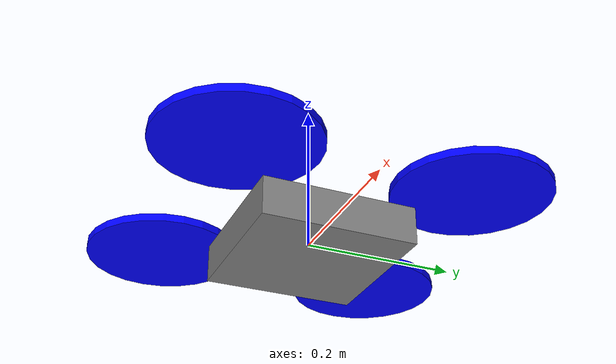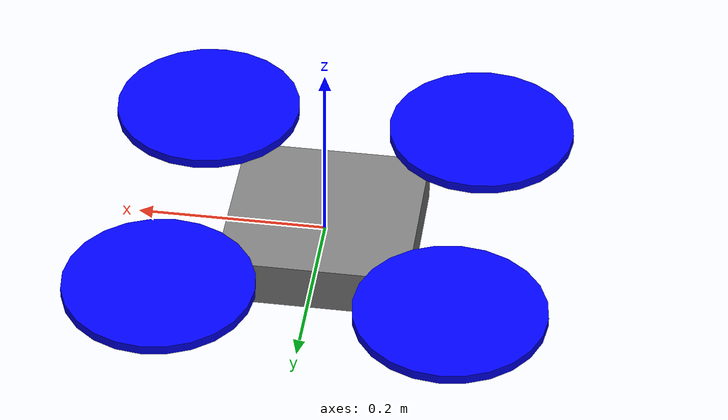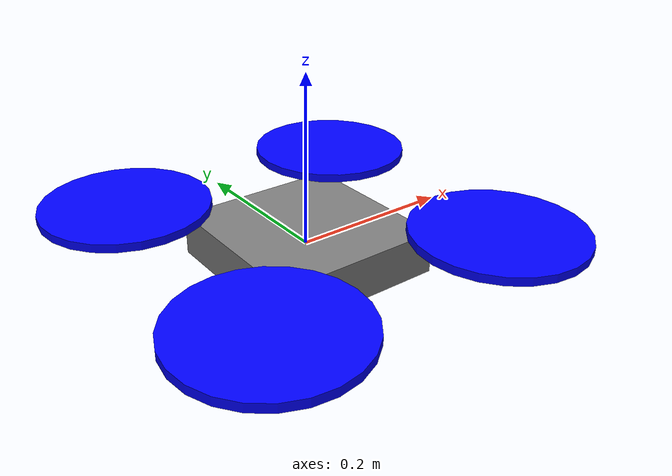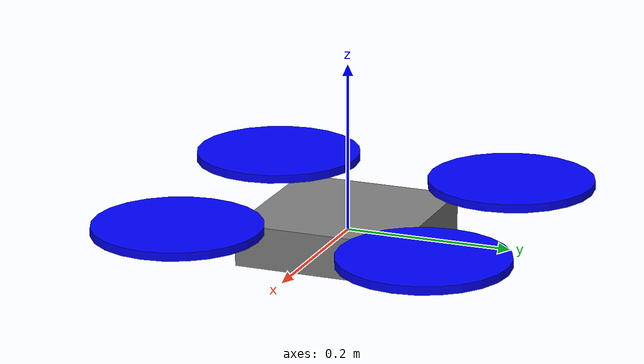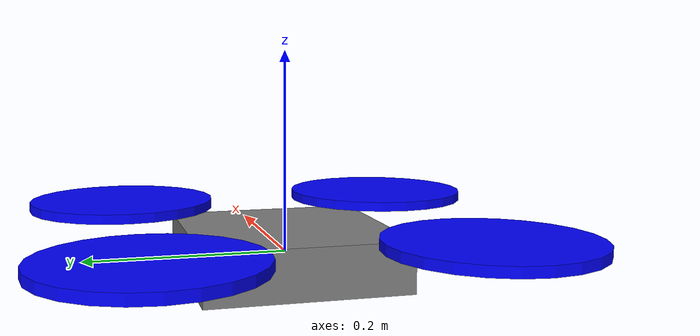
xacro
<?xml version="1.0"?>
<robot xmlns:xacro="http://www.ros.org/wiki/xacro" name="cnav_drone">

    <xacro:macro name="inertial_box" params="mass x y z *origin">
        <inertial>
            <xacro:insert_block name="origin"/>
            <mass value="${mass}"/>
            <inertia ixx="${(1/12) * mass * (y*y+z*z)}" ixy="0.0" ixz="0.0"
                     iyy="${(1/12) * mass * (x*x+z*z)}" iyz="0.0"
                     izz="${(1/12) * mass * (x*x+y*y)}" />
        </inertial>
    </xacro:macro>

    <xacro:macro name="inertial_cylinder" params="mass length radius *origin">
        <inertial>
            <xacro:insert_block name="origin"/>
            <mass value="${mass}"/>
            <inertia ixx="${(1/12) * mass * (3*radius*radius + length*length)}" ixy="0.0" ixz="0.0"
                     iyy="${(1/12) * mass * (3*radius*radius + length*length)}" iyz="0.0"
                     izz="${(0.5) * mass * (radius*radius)}" />
        </inertial>
    </xacro:macro>

    <link name="base_footprint"/>
    <joint name="base_joint" type="fixed">
        <parent link="base_footprint"/>
        <child link="base_link"/>
        <origin xyz="0 0 0" rpy="0 0 0"/>
    </joint>

    <link name="base_link">
        <visual>
            <geometry><box size="0.2 0.2 0.05"/></geometry>
            <material name="gray"><color rgba="0.5 0.5 0.5 1.0"/></material>
        </visual>
        <collision>
            <geometry><box size="0.2 0.2 0.05"/></geometry>
        </collision>
        <xacro:inertial_box mass="1.0" x="0.2" y="0.2" z="0.05">
            <origin xyz="0 0 0" rpy="0 0 0"/>
        </xacro:inertial_box>
    </link>

    <xacro:macro name="rotor" params="prefix x_offset y_offset direction">
        <joint name="${prefix}_rotor_joint" type="continuous">
            <parent link="base_link"/>
            <child link="${prefix}_rotor"/>
            <origin xyz="${x_offset} ${y_offset} 0.03" rpy="0 0 0"/>
            <axis xyz="0 0 1"/>
        </joint>

        <link name="${prefix}_rotor">
            <visual>
                <geometry><cylinder radius="0.1" length="0.01"/></geometry>
                <material name="blue"><color rgba="0.0 0.0 1.0 1.0"/></material>
            </visual>
            <collision>
                <geometry><cylinder radius="0.1" length="0.01"/></geometry>
            </collision>
            <xacro:inertial_cylinder mass="0.05" length="0.01" radius="0.1">
                <origin xyz="0 0 0" rpy="0 0 0"/>
            </xacro:inertial_cylinder>
        </link>
    </xacro:macro>

    <xacro:rotor prefix="fl" x_offset="0.15" y_offset="0.15" direction="ccw"/>
    <xacro:rotor prefix="fr" x_offset="0.15" y_offset="-0.15" direction="cw"/>
    <xacro:rotor prefix="bl" x_offset="-0.15" y_offset="0.15" direction="cw"/>
    <xacro:rotor prefix="br" x_offset="-0.15" y_offset="-0.15" direction="ccw"/>

    <gazebo>
        <plugin filename="gz-sim-multicopter-control-system" name="gz::sim::systems::MulticopterVelocityControl">
            <robotNamespace>cnav_drone</robotNamespace>
            <commandSubTopic>cmd_vel</commandSubTopic>
            <comLinkName>base_footprint</comLinkName>
            <velocityGain>2.7 2.7 2.7</velocityGain>
            <attitudeGain>2 3 0.15</attitudeGain>
            <angularRateGain>0.4 0.52 0.18</angularRateGain>
            <maximumLinearAcceleration>2 2 2</maximumLinearAcceleration>

            <rotorConfiguration>
                <rotor>
                    <jointName>fl_rotor_joint</jointName>
                    <forceConstant>8.54858e-06</forceConstant>
                    <momentConstant>0.016</momentConstant>
                    <direction>1</direction>
                </rotor>
                <rotor>
                    <jointName>fr_rotor_joint</jointName>
                    <forceConstant>8.54858e-06</forceConstant>
                    <momentConstant>0.016</momentConstant>
                    <direction>-1</direction>
                </rotor>
                <rotor>
                    <jointName>bl_rotor_joint</jointName>
                    <forceConstant>8.54858e-06</forceConstant>
                    <momentConstant>0.016</momentConstant>
                    <direction>-1</direction>
                </rotor>
                <rotor>
                    <jointName>br_rotor_joint</jointName>
                    <forceConstant>8.54858e-06</forceConstant>
                    <momentConstant>0.016</momentConstant>
                    <direction>1</direction>
                </rotor>
            </rotorConfiguration>
        </plugin>

        <plugin filename="gz-sim-multicopter-motor-model-system" name="gz::sim::systems::MulticopterMotorModel">
            <robotNamespace>cnav_drone</robotNamespace>
            <jointName>fl_rotor_joint</jointName>
            <linkName>fl_rotor</linkName>
            <turningDirection>ccw</turningDirection>
            <timeConstantUp>0.0125</timeConstantUp>
            <timeConstantDown>0.025</timeConstantDown>
            <maxRotVelocity>800.0</maxRotVelocity>
            <motorConstant>8.54858e-06</motorConstant>
            <momentConstant>0.016</momentConstant>
            <commandSubTopic>command/motor_speed</commandSubTopic>
            <actuator_number>0</actuator_number>
            <rotorDragCoefficient>8.06428e-05</rotorDragCoefficient>
            <rollingMomentCoefficient>1e-06</rollingMomentCoefficient>
            <motorType>velocity</motorType>
        </plugin>

        <plugin filename="gz-sim-multicopter-motor-model-system" name="gz::sim::systems::MulticopterMotorModel">
            <robotNamespace>cnav_drone</robotNamespace>
            <jointName>fr_rotor_joint</jointName>
            <linkName>fr_rotor</linkName>
            <turningDirection>cw</turningDirection>
            <timeConstantUp>0.0125</timeConstantUp>
            <timeConstantDown>0.025</timeConstantDown>
            <maxRotVelocity>800.0</maxRotVelocity>
            <motorConstant>8.54858e-06</motorConstant>
            <momentConstant>0.016</momentConstant>
            <commandSubTopic>command/motor_speed</commandSubTopic>
            <actuator_number>1</actuator_number>
            <rotorDragCoefficient>8.06428e-05</rotorDragCoefficient>
            <rollingMomentCoefficient>1e-06</rollingMomentCoefficient>
            <motorType>velocity</motorType>
        </plugin>

        <plugin filename="gz-sim-multicopter-motor-model-system" name="gz::sim::systems::MulticopterMotorModel">
            <robotNamespace>cnav_drone</robotNamespace>
            <jointName>bl_rotor_joint</jointName>
            <linkName>bl_rotor</linkName>
            <turningDirection>cw</turningDirection>
            <timeConstantUp>0.0125</timeConstantUp>
            <timeConstantDown>0.025</timeConstantDown>
            <maxRotVelocity>800.0</maxRotVelocity>
            <motorConstant>8.54858e-06</motorConstant>
            <momentConstant>0.016</momentConstant>
            <commandSubTopic>command/motor_speed</commandSubTopic>
            <actuator_number>2</actuator_number>
            <rotorDragCoefficient>8.06428e-05</rotorDragCoefficient>
            <rollingMomentCoefficient>1e-06</rollingMomentCoefficient>
            <motorType>velocity</motorType>
        </plugin>

        <plugin filename="gz-sim-multicopter-motor-model-system" name="gz::sim::systems::MulticopterMotorModel">
            <robotNamespace>cnav_drone</robotNamespace>
            <jointName>br_rotor_joint</jointName>
            <linkName>br_rotor</linkName>
            <turningDirection>ccw</turningDirection>
            <timeConstantUp>0.0125</timeConstantUp>
            <timeConstantDown>0.025</timeConstantDown>
            <maxRotVelocity>800.0</maxRotVelocity>
            <motorConstant>8.54858e-06</motorConstant>
            <momentConstant>0.016</momentConstant>
            <commandSubTopic>command/motor_speed</commandSubTopic>
            <actuator_number>3</actuator_number>
            <rotorDragCoefficient>8.06428e-05</rotorDragCoefficient>
            <rollingMomentCoefficient>1e-06</rollingMomentCoefficient>
            <motorType>velocity</motorType>
        </plugin>
    </gazebo>
</robot>
